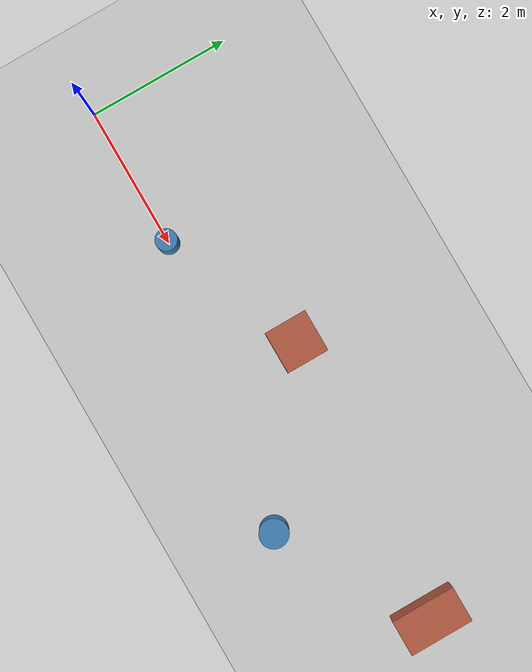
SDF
<?xml version="1.0"?>
<!-- BeetleBot simulation world: isolated static obstacles on the route
     Obstacles are 0.5 m tall so they are seen by the RPLidar C1 at its
     documented 0.206 m mounting height. -->
<sdf version="1.9">
  <world name="obstacles">
    <physics name="1ms" type="ignored">
      <max_step_size>0.002</max_step_size>
      <real_time_factor>1.0</real_time_factor>
    </physics>
    <plugin filename="gz-sim-physics-system" name="gz::sim::systems::Physics"/>
    <plugin filename="gz-sim-user-commands-system" name="gz::sim::systems::UserCommands"/>
    <plugin filename="gz-sim-scene-broadcaster-system" name="gz::sim::systems::SceneBroadcaster"/>
    <plugin filename="gz-sim-sensors-system" name="gz::sim::systems::Sensors">
      <render_engine>ogre2</render_engine>
    </plugin>
    <plugin filename="gz-sim-imu-system" name="gz::sim::systems::Imu"/>
    <gravity>0 0 -9.8</gravity>
    <light type="directional" name="sun">
      <cast_shadows>false</cast_shadows>
      <pose>0 0 10 0 0 0</pose>
      <diffuse>0.9 0.9 0.9 1</diffuse><specular>0.2 0.2 0.2 1</specular>
      <direction>-0.3 0.2 -0.9</direction>
    </light>
    <model name="ground_plane">
      <static>true</static>
      <link name="link">
        <collision name="collision">
          <geometry><plane><normal>0 0 1</normal><size>60 60</size></plane></geometry>
          <surface><friction><ode><mu>1.0</mu><mu2>1.0</mu2></ode></friction></surface>
        </collision>
        <visual name="visual">
          <geometry><plane><normal>0 0 1</normal><size>60 60</size></plane></geometry>
          <material><ambient>0.8 0.8 0.8 1</ambient><diffuse>0.8 0.8 0.8 1</diffuse></material>
        </visual>
      </link>
    </model>
    <model name="pole_a">
      <static>true</static><pose>2.0 0.0 0.25 0 0 0</pose>
      <link name="link">
        <collision name="collision"><geometry><cylinder><radius>0.15</radius><length>0.5</length></cylinder></geometry></collision>
        <visual name="visual"><geometry><cylinder><radius>0.15</radius><length>0.5</length></cylinder></geometry>
          <material><ambient>0.2 0.4 0.6 1</ambient><diffuse>0.25 0.5 0.7 1</diffuse></material></visual>
      </link>
    </model>
    <model name="crate_a">
      <static>true</static><pose>4.0 0.8 0.25 0 0 0</pose>
      <link name="link">
        <collision name="collision"><geometry><box><size>0.6 0.6 0.5</size></box></geometry></collision>
        <visual name="visual"><geometry><box><size>0.6 0.6 0.5</size></box></geometry>
          <material><ambient>0.6 0.3 0.2 1</ambient><diffuse>0.7 0.35 0.25 1</diffuse></material></visual>
      </link>
    </model>
    <model name="pole_b">
      <static>true</static><pose>6.0 -0.7 0.25 0 0 0</pose>
      <link name="link">
        <collision name="collision"><geometry><cylinder><radius>0.20</radius><length>0.5</length></cylinder></geometry></collision>
        <visual name="visual"><geometry><cylinder><radius>0.20</radius><length>0.5</length></cylinder></geometry>
          <material><ambient>0.2 0.4 0.6 1</ambient><diffuse>0.25 0.5 0.7 1</diffuse></material></visual>
      </link>
    </model>
    <model name="crate_b">
      <static>true</static><pose>8.0 0.5 0.25 0 0 0</pose>
      <link name="link">
        <collision name="collision"><geometry><box><size>0.5 0.9 0.5</size></box></geometry></collision>
        <visual name="visual"><geometry><box><size>0.5 0.9 0.5</size></box></geometry>
          <material><ambient>0.6 0.3 0.2 1</ambient><diffuse>0.7 0.35 0.25 1</diffuse></material></visual>
      </link>
    </model>
  </world>
</sdf>
